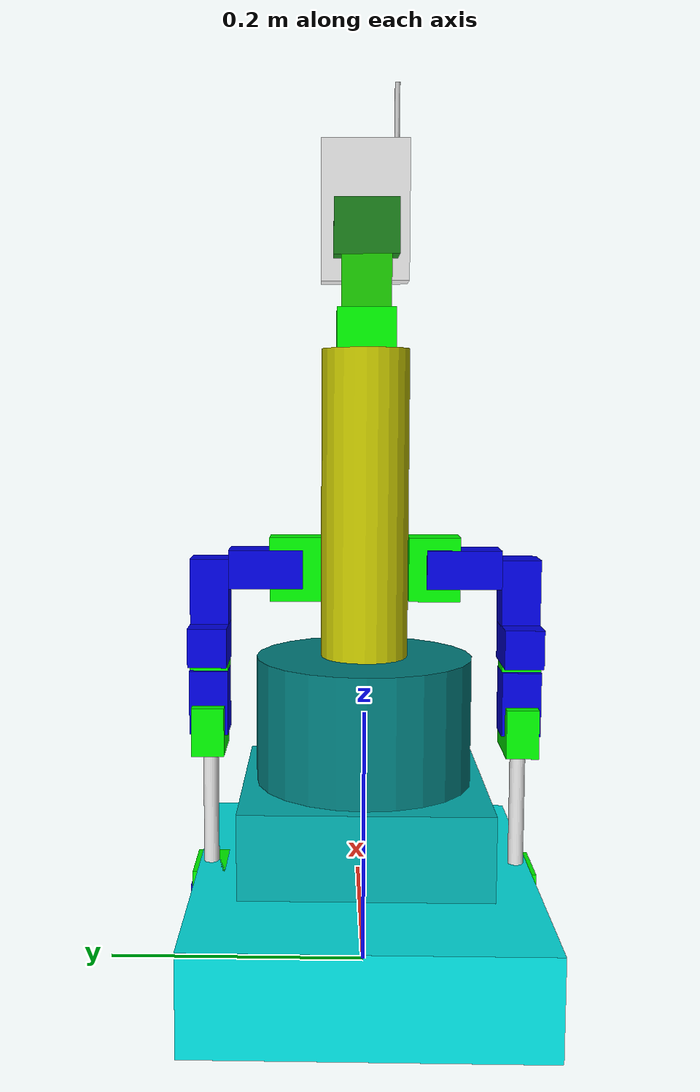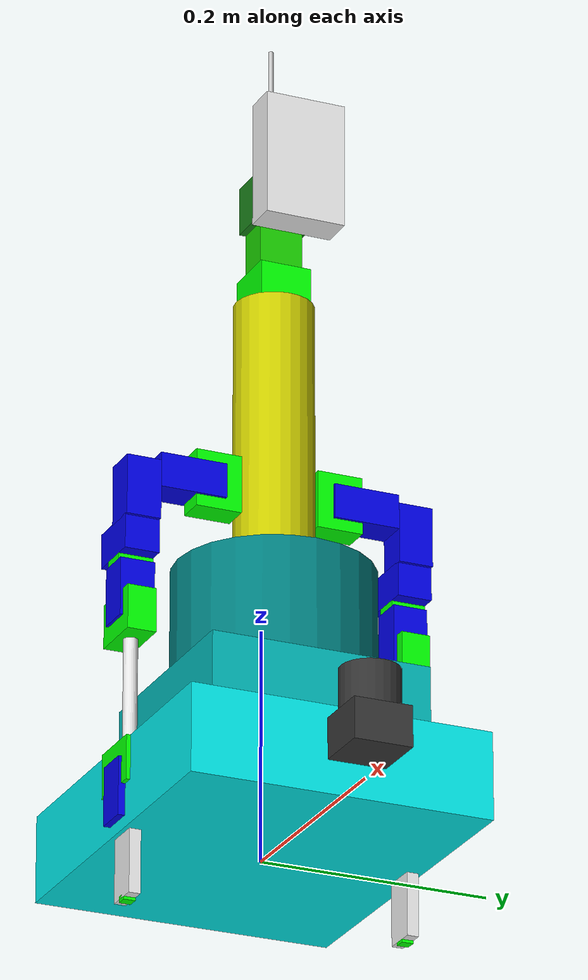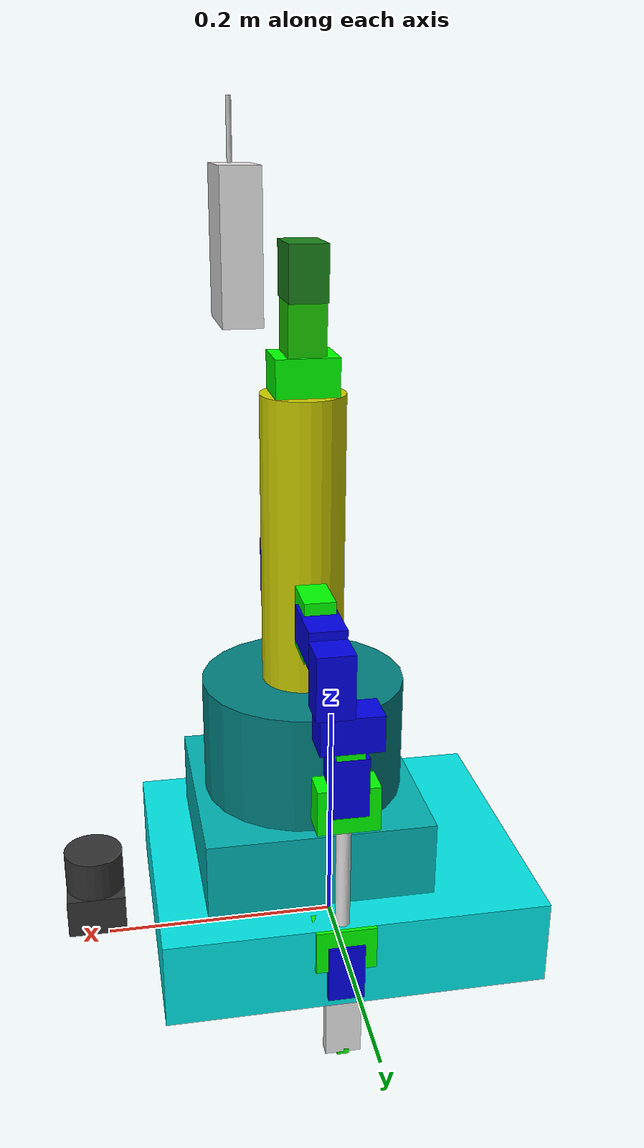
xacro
<?xml version="1.0"?>

<!-- XML namespaces -->
<robot xmlns:sensor="http://playerstage.sourceforge.net/gazebo/xmlschema/#sensor"
       xmlns:controller="http://playerstage.sourceforge.net/gazebo/xmlschema/#controller"
       xmlns:interface="http://playerstage.sourceforge.net/gazebo/xmlschema/#interface"
       xmlns:xacro="http://ros.org/wiki/xacro"
       name="pi_robot">

  <xacro:macro name="cyan1">
    <material name="cyan1">
      <color rgba="0 0.9 0.9 1.0"/>
    </material>
  </xacro:macro>

  <xacro:macro name="cyan2">
    <material name="cyan2">
       <color rgba="0 0.7 0.7 1.0"/>
    </material>
  </xacro:macro>

  <xacro:macro name="cyan3">
    <material name="cyan3">
       <color rgba="0 0.5 0.5 1.0"/>
    </material>
  </xacro:macro>

  <xacro:macro name="black1">
    <material name="black1">
      <color rgba="0.2 0.2 0.2 1.0"/>
    </material>
  </xacro:macro>

  <xacro:macro name="yellow2">
    <material name="yellow2">
      <color rgba="0.8 0.8 0 1.0"/>
    </material>
  </xacro:macro>

  <xacro:macro name="green1">
    <material name="green1">
      <color rgba="0 1 0 1.0"/>
    </material>
  </xacro:macro>

  <xacro:macro name="green2">
    <material name="green2">
      <color rgba="0.1 0.8 0 1.0"/>
    </material>
  </xacro:macro>

  <xacro:macro name="green3">
    <material name="green3">
      <color rgba="0.1 0.5 0.1 1.0"/>
    </material>
  </xacro:macro>

  <xacro:macro name="grey1">
    <material name="grey1">
      <color rgba="0.9 0.9 0.9 1.0"/>
    </material>
  </xacro:macro>

  <xacro:macro name="grey3">
    <material name="grey3">
      <color rgba="0.8 0.8 0.8 1.0"/>
    </material>
  </xacro:macro>

  <xacro:macro name="blue1">
    <material name="blue1">
      <color rgba="0 0 0.9 1.0"/>
    </material>
  </xacro:macro>

  <xacro:macro name="my_box" params="name lwh xyz rpy mass *material *gazebo">
    <link name="${name}">
      <visual>
        <origin xyz="${xyz}" rpy="${rpy}" />
        <geometry>
          <box size="${lwh}" />
        </geometry>
        <xacro:insert_block name="material" />
                </visual>
                <collision>
          <origin xyz="${xyz}" rpy="${rpy}" />
          <geometry>
            <box size="${lwh}" />
          </geometry>
                </collision>
                <xacro:default_inertial mass="${mass}" />
        </link>
    <xacro:insert_block name="gazebo" />
  </xacro:macro>

  <xacro:macro name="my_cylinder" params="name l r xyz rpy mass *material *gazebo">
    <link name="${name}">
      <visual>
        <origin xyz="${xyz}" rpy="${rpy}" />
        <geometry>
          <cylinder length="${l}" radius="${r}" />
        </geometry>
        <xacro:insert_block name="material" />
                </visual>
                <collision>
          <origin xyz="${xyz}" rpy="${rpy}" />
          <geometry>
            <cylinder length="${l}" radius="${r}" />
          </geometry>
                </collision>
                <xacro:default_inertial mass="${mass}" />
        </link>
         <xacro:insert_block name="gazebo" />
  </xacro:macro>

    <xacro:macro name="default_inertial" params="mass">
    <inertial>
      <mass value="${mass}" />
      <inertia ixx="1.0" ixy="0.0" ixz="0.0"
                     iyy="1.0" iyz="0.0"
                     izz="1.0" />
      </inertial>
    </xacro:macro>

   <!-- ============================   Body   ============================ -->

  <xacro:my_box name="base_link" lwh="0.32 0.26 0.075" xyz="0 0 0.0375" rpy="0 0 0" mass="2">
    <xacro:cyan1 />
     <gazebo reference="base_link">
      <material>Gazebo/Grey</material>
      <selfCollide>true</selfCollide>
    </gazebo>
  </xacro:my_box>

  <xacro:my_box name="base_laser_bottom" lwh="0.05 0.05 0.035" xyz="0 0 0" rpy="0 0 0" mass="0.1">
    <xacro:black1 />
    <gazebo reference="base_laser_bottom">
      <material>Gazebo/FlatBlack</material>
      <selfCollide>true</selfCollide>
    </gazebo>
  </xacro:my_box>

  <xacro:my_cylinder name="base_laser" l="0.035" r="0.025" xyz="0 0 0" rpy="0 0 0" mass="0.1">
    <xacro:black1 />
     <gazebo reference="base_laser">
      <material>Gazebo/Grey</material>
      <selfCollide>true</selfCollide>
    </gazebo>
  </xacro:my_cylinder>

  <xacro:my_box name="cpu_link" lwh="0.19 0.19 0.065" xyz="0 0 0.0325" rpy="0 0 0" mass="2">
    <xacro:cyan2 />
    <gazebo reference="cpu_link">
      <material>Gazebo/FlatBlack</material>
      <selfCollide>true</selfCollide>
    </gazebo>
  </xacro:my_box>

  <xacro:my_cylinder name="upper_base_link" l="0.10" r="0.085" xyz="0 0 0.05" rpy="0 0 0" mass="1">
    <xacro:cyan3 />
     <gazebo reference="upper_base_link">
      <material>Gazebo/Grey</material>
      <selfCollide>true</selfCollide>
    </gazebo>
  </xacro:my_cylinder>

  <xacro:my_cylinder name="torso_link" l="0.24" r="0.034" xyz="0 0 0.12" rpy="0 0 0" mass="1">
    <xacro:yellow2 />
     <gazebo reference="torso_link">
      <material>Gazebo/Grey</material>
      <selfCollide>true</selfCollide>
    </gazebo>
  </xacro:my_cylinder>

  <xacro:my_box name="head_pan_link" lwh="0.05 0.045 0.045" xyz="0 0 0.0225" rpy="0 0 0" mass="0.055">
    <xacro:green1 />
     <gazebo reference="head_pan_link">
      <material>Gazebo/FlatBlack</material>
      <selfCollide>true</selfCollide>
    </gazebo>
  </xacro:my_box>

  <xacro:my_box name="head_tilt_link" lwh="0.03 0.038 0.04" xyz="0 0 0.02" rpy="0 0 0" mass="0.055">
    <xacro:green2 />
     <gazebo reference="head_tilt_link">
      <material>Gazebo/FlatBlack</material>
      <selfCollide>true</selfCollide>
    </gazebo>
  </xacro:my_box>

  <xacro:my_box name="neck_link" lwh="0.03 0.05 0.042" xyz="0 0 0.021" rpy="0 0 0" mass="0.05">
    <xacro:green3 />
     <gazebo reference="neck_link">
      <material>Gazebo/WhiteEmissive</material>
      <selfCollide>true</selfCollide>
    </gazebo>
  </xacro:my_box>

  <xacro:my_box name="head_link" lwh="0.03 0.07 0.11" xyz="0 0 0.025" rpy="0 0 0" mass="0.3">
    <xacro:grey1 />
     <gazebo reference="head_link">
      <material>Gazebo/WhiteEmissive</material>
      <selfCollide>true</selfCollide>
    </gazebo>
  </xacro:my_box>

  <xacro:my_cylinder name="antenna_link" l="0.05" r="0.002" xyz="0 0 0.035" rpy="0 0 0" mass="0.05">
    <xacro:grey3 />
     <gazebo reference="antenna_link">
      <material>Gazebo/WhiteEmissive</material>
      <selfCollide>true</selfCollide>
    </gazebo>
  </xacro:my_cylinder>

   <!-- ============================   Arms   ============================ -->

  <xacro:macro name="arm" params="side reflect">

    <xacro:my_box name="${side}_shoulder_link" lwh="0.025 0.04 0.05" xyz="0 ${reflect*0.02} 0" rpy="0 0 0" mass="0.05">
      <xacro:green1 />
       <gazebo reference="${side}_shoulder_link">
        <material>Gazebo/WhiteEmissive</material>
        <selfCollide>true</selfCollide>
      </gazebo>
    </xacro:my_box>

    <xacro:my_box name="${side}_shoulder_pan_link" lwh="0.03 0.058 0.03" xyz="0 ${reflect*0.012} 0" rpy="0 0 0" mass="0.055">
      <xacro:blue1 />
       <gazebo reference="${side}_shoulder_pan_link">
        <material>Gazebo/FlatBlack</material>
        <selfCollide>true</selfCollide>
      </gazebo>
    </xacro:my_box>

    <xacro:my_box name="${side}_shoulder_lift_link" lwh="0.03 0.03 0.052" xyz="0 ${reflect*0.009} -0.018" rpy="0 0 0" mass="0.055">
      <xacro:blue1 />
       <gazebo reference="${side}_shoulder_lift_link">
        <material>Gazebo/FlatBlack</material>
        <selfCollide>true</selfCollide>
      </gazebo>
    </xacro:my_box>

    <xacro:my_box name="${side}_arm_roll_link" lwh="0.05 0.03 0.03" xyz="-0.013 ${reflect*0.009} 0" rpy="0 0 0" mass="0.055">
      <xacro:blue1 />
       <gazebo reference="${side}_arm_roll_link">
        <material>Gazebo/FlatBlack</material>
        <selfCollide>true</selfCollide>
      </gazebo>
    </xacro:my_box>

    <xacro:my_box name="${side}_upper_elbow_bracket_link" lwh="0.03 0.022 0.005" xyz="0 0 0" rpy="0 0 0" mass="0.05">
      <xacro:green1 />
       <gazebo reference="${side}_upper_elbow_bracket_link">
        <material>Gazebo/WhiteEmissive</material>
        <selfCollide>true</selfCollide>
      </gazebo>
    </xacro:my_box>

    <xacro:my_box name="${side}_elbow_servo_link" lwh="0.03 0.03 0.05" xyz="0 0 0" rpy="0 0 0" mass="0.055">
      <xacro:blue1 />
       <gazebo reference="${side}_elbow_servo_link">
        <material>Gazebo/FlatBlack</material>
        <selfCollide>true</selfCollide>
      </gazebo>
    </xacro:my_box>

    <xacro:my_box name="${side}_elbow_link" lwh="0.05 0.025 0.038" xyz="0 0 -0.021" rpy="0 0 0" mass="0.05">
      <xacro:green1 />
       <gazebo reference="${side}_elbow_link">
        <material>Gazebo/WhiteEmissive</material>
        <selfCollide>true</selfCollide>
      </gazebo>
    </xacro:my_box>

    <xacro:my_cylinder name="${side}_lower_arm_link" l="0.092" r="0.006" xyz="0.0015 0 -0.048" rpy="0 0 0" mass="0.2">
      <xacro:grey1 />
      <gazebo reference="${side}_lower_arm_link">
        <material>Gazebo/Chrome</material>
        <selfCollide>true</selfCollide>
      </gazebo>
    </xacro:my_cylinder>

    <xacro:my_box name="${side}_wrist_bracket_link" lwh="0.05 0.025 0.038" xyz="0 0 -0.021" rpy="0 0 0" mass="0.05">
      <xacro:green1 />
       <gazebo reference="${side}_wrist_bracket_link">
        <material>Gazebo/WhiteEmissive</material>
        <selfCollide>true</selfCollide>
      </gazebo>
    </xacro:my_box>

    <xacro:my_box name="${side}_wrist_link" lwh="0.03 0.03 0.05" xyz="0 0 -0.016" rpy="0 0 0" mass="0.055">
      <xacro:blue1 />
       <gazebo reference="${side}_wrist_link">
        <material>Gazebo/FlatBlack</material>
        <selfCollide>true</selfCollide>
      </gazebo>
    </xacro:my_box>

    <xacro:my_box name="${side}_hand_link" lwh="0.03 0.01 0.064" xyz="0 0 -0.032" rpy="0 0 0" mass="0.1">
      <xacro:grey1 />
       <gazebo reference="${side}_hand_link">
        <material>Gazebo/WhiteEmissive</material>
        <selfCollide>true</selfCollide>
      </gazebo>
    </xacro:my_box>

    <xacro:my_box name="${side}_finger_link" lwh="0.01 0.01 0.005" xyz="0 0 0" rpy="0 0 0" mass="0.001">
      <xacro:green1 />
       <gazebo reference="${side}_finger_link">
        <material>Gazebo/WhiteEmissive</material>
        <selfCollide>true</selfCollide>
      </gazebo>
    </xacro:my_box>
  </xacro:macro>

  <xacro:arm side="left" reflect="1" />

  <xacro:arm side="right" reflect="-1" />

  <!-- =================== Joint Definitions ==================== -->

  <joint name="cpu_joint" type="fixed">
      <parent link="base_link" />
      <child link="cpu_link" />
      <origin xyz="0.025 0 0.075" rpy="0 0 0" />
  </joint>

  <joint name="base_laser_bottom_joint" type="fixed">
      <parent link="base_link" />
      <child link="base_laser_bottom" />
      <origin xyz="0.21 0 0.035" rpy="0 0 0" />
  </joint>

  <joint name="base_laser_joint" type="fixed">
      <parent link="base_laser_bottom" />
      <child link="base_laser" />
      <origin xyz="0 0 0.035" rpy="0 0 0" />
  </joint>

  <joint name="upper_base_joint" type="fixed">
      <parent link="cpu_link" />
      <child link="upper_base_link" />
      <origin xyz="0 0 0.065" rpy="0 0 0" />
  </joint>

  <joint name="torso_joint" type="revolute">
      <parent link="upper_base_link" />
      <child link="torso_link" />
      <origin xyz="0 0 0.10" rpy="0 0 0" />
      <axis xyz="0 0 1" />
      <limit lower="-3.1416" upper="3.1416" effort="10" velocity="3" />
    </joint>

  <joint name="head_pan_servo" type="fixed">
      <parent link="torso_link" />
      <child link="head_pan_link" />
      <origin xyz="0 0 0.225" rpy="0 0 0" />
  </joint>

  <joint name="head_pan_joint" type="revolute">
      <parent link="head_pan_link" />
      <child link="head_tilt_link" />
      <origin xyz="0 0 0.045" rpy="0 0 0" />
      <axis xyz="0 0 1" />
      <limit lower="-3.1416" upper="3.1416" effort="10" velocity="3" />
    </joint>

   <joint name="head_tilt_joint" type="revolute">
      <parent link="head_tilt_link" />
      <child link="neck_link" />
      <origin xyz="0 0 0.04" rpy="0 0 0" />
      <axis xyz="0 -1 0" />
      <limit lower="-1.57" upper="1.57" effort="10" velocity="3" />
    </joint>

   <joint name="neck_joint" type="fixed">
      <parent link="neck_link" />
      <child link="head_link" />
      <origin xyz="0.05 0 0.015" rpy="0 0 0" />
  </joint>

  <joint name="antenna_joint" type="fixed">
      <parent link="head_link" />
      <child link="antenna_link" />
      <origin xyz="0.0 -0.025 0.065" rpy="0 0 0" />
  </joint>

   <joint name="left_shoulder_joint" type="fixed">
      <parent link="torso_link" />
      <child link="left_shoulder_link" />
      <origin xyz="0 0.034 0.07" rpy="0 0 0" />
  </joint>

   <joint name="right_shoulder_joint" type="fixed">
      <parent link="torso_link" />
      <child link="right_shoulder_link" />
      <origin xyz="0 -0.034 0.07" rpy="0 0 0" />
  </joint>

   <joint name="left_shoulder_pan_joint" type="revolute">
      <parent link="left_shoulder_link" />
      <child link="left_shoulder_pan_link" />
      <origin xyz="0 0.031 0" rpy="0 0 0" />
         <limit lower="-2.53" upper="2.53" effort="10" velocity="3" />
        <axis xyz="0 0 -1" />
  </joint>

   <joint name="right_shoulder_pan_joint" type="revolute">
      <parent link="right_shoulder_link" />
      <child link="right_shoulder_pan_link" />
      <origin xyz="0 -0.031 0" rpy="0 0 0" />
         <limit lower="-2.53" upper="2.53" effort="10" velocity="3" />
        <axis xyz="0 0 1" />
  </joint>

   <joint name="left_shoulder_lift_joint" type="revolute">
      <parent link="left_shoulder_pan_link" />
      <child link="left_shoulder_lift_link" />
      <origin xyz="0 0.047 0" rpy="0 0 0" />
         <limit lower="-2.53" upper="2.53" effort="10" velocity="3" />
        <axis xyz="0 -1 0" />
  </joint>

   <joint name="right_shoulder_lift_joint" type="revolute">
      <parent link="right_shoulder_pan_link" />
      <child link="right_shoulder_lift_link" />
      <origin xyz="0 -0.047 0" rpy="0 0 0" />
         <limit lower="-2.53" upper="2.53" effort="10" velocity="3" />
        <axis xyz="0 1 0" />
  </joint>

   <joint name="left_arm_roll_joint" type="revolute">
      <parent link="left_shoulder_lift_link" />
      <child link="left_arm_roll_link" />
        <limit lower="-2.53" upper="2.53" effort="10" velocity="3" />
      <origin xyz="0 0 -0.058" rpy="0 0 0" />
        <axis xyz="0 0 1" />
  </joint>

   <joint name="right_arm_roll_joint" type="revolute">
      <parent link="right_shoulder_lift_link" />
      <child link="right_arm_roll_link" />
        <limit lower="-2.53" upper="2.53" effort="10" velocity="3" />
      <origin xyz="0 0 -0.058" rpy="0 0 0" />
        <axis xyz="0 0 1" />
  </joint>

   <joint name="left_upper_elbow_bracket_joint" type="fixed">
      <parent link="left_arm_roll_link" />
      <child link="left_upper_elbow_bracket_link" />
      <origin xyz="-0.012 0.009 -0.0175" rpy="0 0 -1.57" />
  </joint>

   <joint name="right_upper_elbow_bracket_joint" type="fixed">
      <parent link="right_arm_roll_link" />
      <child link="right_upper_elbow_bracket_link" />
      <origin xyz="-0.012 -0.009 -0.0175" rpy="0 0 -1.57" />
  </joint>

   <joint name="left_elbow_servo_joint" type="fixed">
      <parent link="left_upper_elbow_bracket_link" />
      <child link="left_elbow_servo_link" />
      <origin xyz="0 0 -0.0275" rpy="0 0 1.57" />
        <axis xyz="0 1 0" />
  </joint>

   <joint name="right_elbow_servo_joint" type="fixed">
      <parent link="right_upper_elbow_bracket_link" />
      <child link="right_elbow_servo_link" />
      <origin xyz="0 0 -0.0275" rpy="0 0 1.57" />
        <axis xyz="0 -1 0" />
  </joint>

   <joint name="left_elbow_joint" type="revolute">
      <parent link="left_elbow_servo_link" />
      <child link="left_elbow_link" />
      <origin xyz="0 0 0" rpy="0 0 0" />
        <limit lower="-2.53" upper="2.53" effort="10" velocity="3" />
        <axis xyz="1 0 0" />
  </joint>

   <joint name="right_elbow_joint" type="revolute">
      <parent link="right_elbow_servo_link" />
      <child link="right_elbow_link" />
      <origin xyz="0 0 0" rpy="0 0 0" />
         <limit lower="-2.53" upper="2.53" effort="10" velocity="3" />
        <axis xyz="1 0 0" />
  </joint>

   <joint name="left_lower_arm_joint" type="fixed">
      <parent link="left_elbow_link" />
      <child link="left_lower_arm_link" />
      <origin xyz="0 0 -0.038" rpy="0 0 0" />
  </joint>

   <joint name="right_lower_arm_joint" type="fixed">
      <parent link="right_elbow_link" />
      <child link="right_lower_arm_link" />
      <origin xyz="0 0 -0.038" rpy="0 0 0" />
  </joint>

   <joint name="left_wrist_bracket_joint" type="fixed">
      <parent link="left_lower_arm_link" />
      <child link="left_wrist_bracket_link" />
      <origin xyz="0 0 -0.092" rpy="0 0 0" />
  </joint>

   <joint name="right_wrist_bracket_joint" type="fixed">
      <parent link="right_lower_arm_link" />
      <child link="right_wrist_bracket_link" />
      <origin xyz="0 0 -0.092" rpy="0 0 0" />
  </joint>

   <joint name="left_wrist_joint" type="revolute">
      <parent link="left_wrist_bracket_link" />
      <child link="left_wrist_link" />
      <origin xyz="0 0 -0.026" rpy="0 0 0" />
         <limit lower="-2.53" upper="2.53" effort="10" velocity="3" />
        <axis xyz="-1 0 0" />
  </joint>

   <joint name="right_wrist_joint" type="revolute">
      <parent link="right_wrist_bracket_link" />
      <child link="right_wrist_link" />
      <origin xyz="0 0 -0.026" rpy="0 0 0" />
         <limit lower="-2.53" upper="2.53" effort="10" velocity="3" />
        <axis xyz="-1 0 0" />
  </joint>

   <joint name="left_hand_joint" type="fixed">
      <parent link="left_wrist_link" />
      <child link="left_hand_link" />
      <origin xyz="0 0 -0.041" rpy="0 0 0" />
  </joint>

   <joint name="right_hand_joint" type="fixed">
      <parent link="right_wrist_link" />
      <child link="right_hand_link" />
      <origin xyz="0 0 -0.041" rpy="0 0 0" />
  </joint>

   <joint name="left_finger_joint" type="fixed">
      <parent link="left_hand_link" />
      <child link="left_finger_link" />
      <origin xyz="0 0 -0.064" rpy="0 0 0" />
  </joint>

   <joint name="right_finger_joint" type="fixed">
      <parent link="right_hand_link" />
      <child link="right_finger_link" />
      <origin xyz="0 0 -0.064" rpy="0 0 0" />
  </joint>

  <gazebo reference="pi_robot">
  </gazebo>

</robot>
